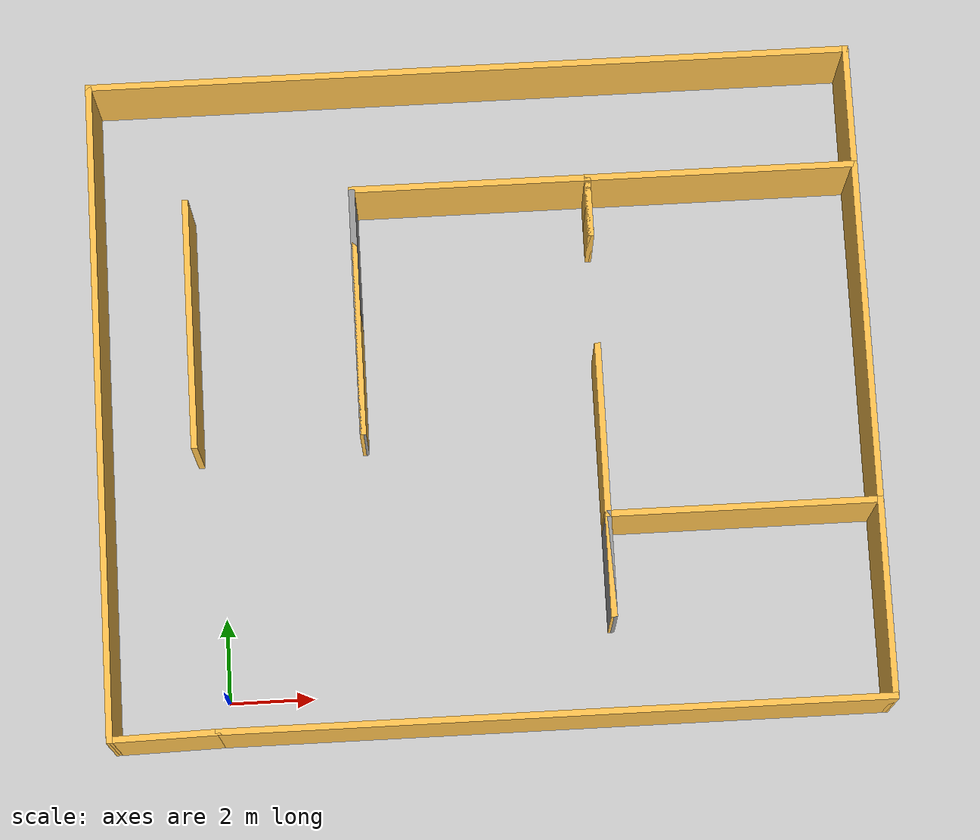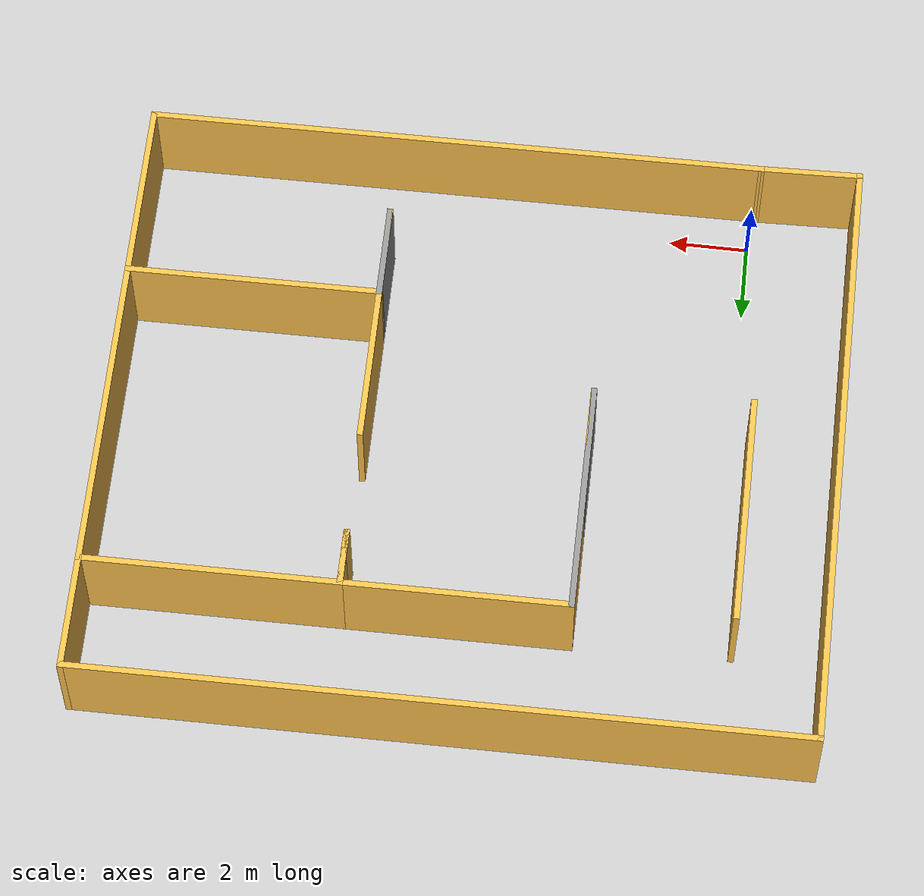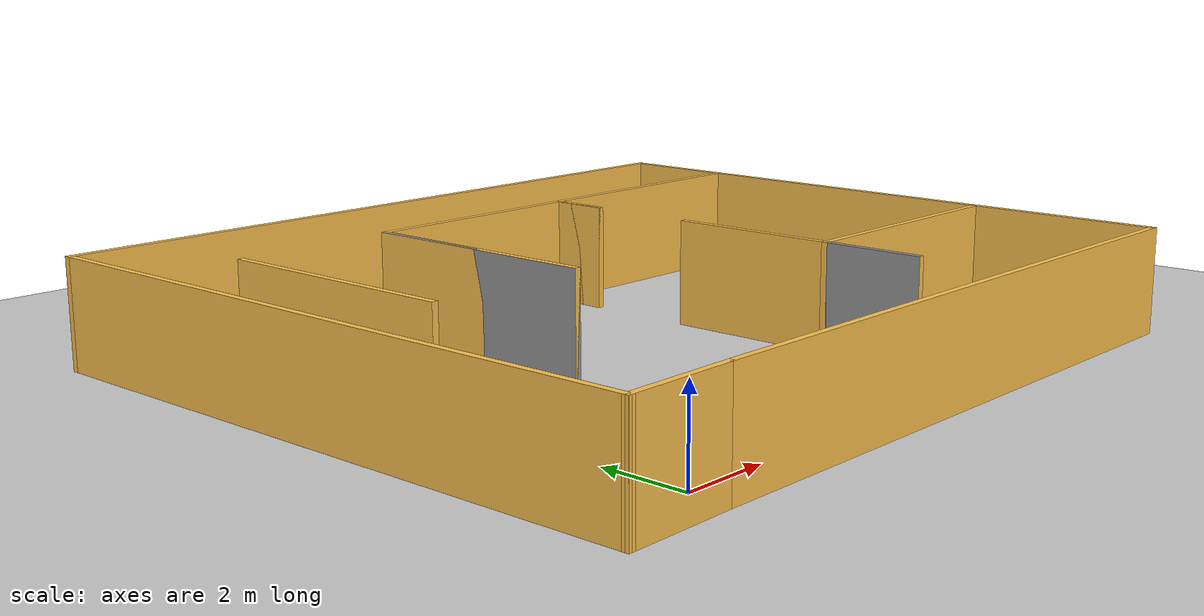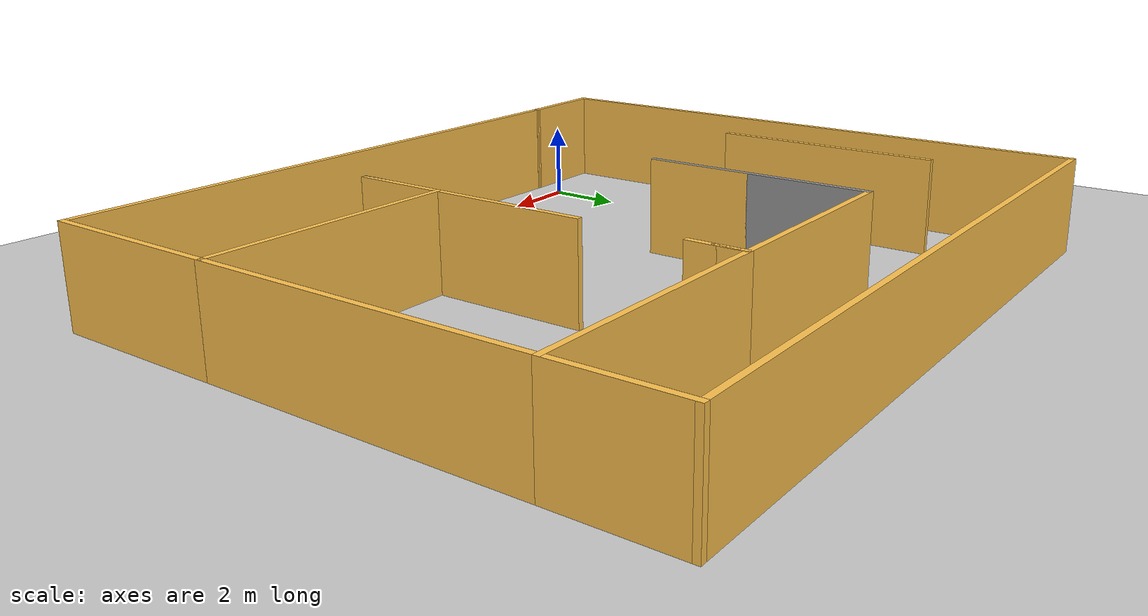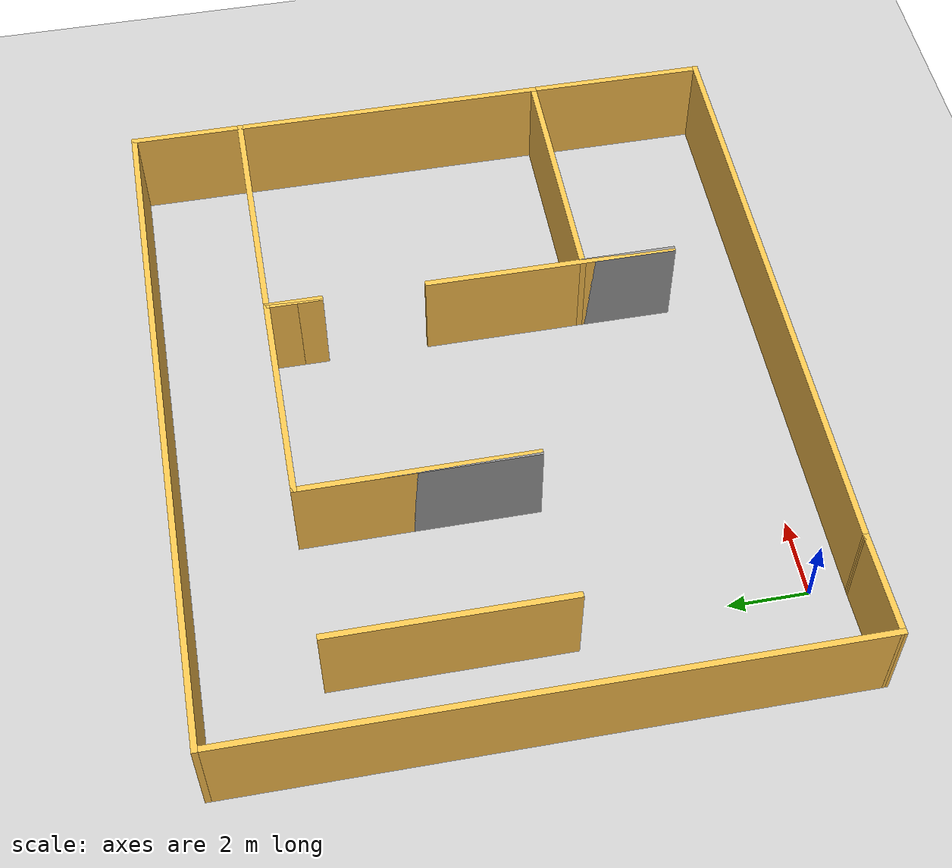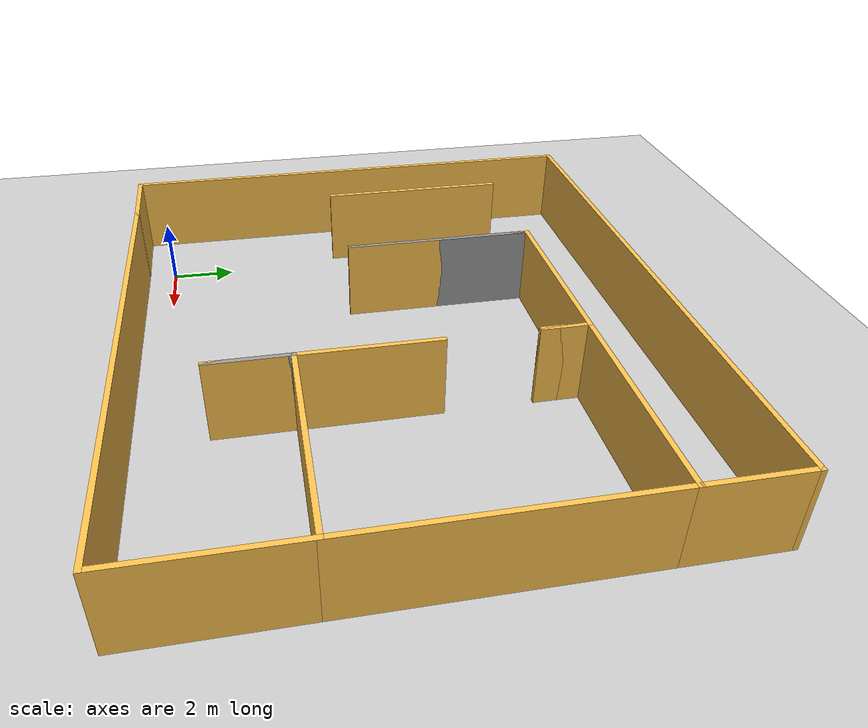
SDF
<sdf version="1.7">
 <world name="default">
  <light name="sun" type="directional">
   <pose>0 0 10 0 -0 0</pose>
   <diffuse>0.8 0.8 0.8 1</diffuse>
   <specular>0.2 0.2 0.2 1</specular>
   <attenuation>
    <range>1000</range>
    <constant>0.9</constant>
    <linear>0.01</linear>
    <quadratic>0.001</quadratic>
   </attenuation>
   <direction>-0.5 0.1 -0.9</direction>
   <spot><inner_angle>0</inner_angle><outer_angle>0</outer_angle><falloff>0</falloff></spot>
  </light>
  <model name="ground_plane">
   <static>1</static>
   <link name="link">
    <collision name="collision">
     <geometry><plane><normal>0 0 1</normal><size>100 100</size></plane></geometry>
     <surface><friction><ode><mu>100</mu><mu2>50</mu2></ode></friction></surface>
    </collision>
    <visual name="visual">
     <cast_shadows>0</cast_shadows>
     <geometry><plane><normal>0 0 1</normal><size>100 100</size></plane></geometry>
     <material>
      <script><uri>file://media/materials/scripts/gazebo.material</uri><name>Gazebo/Grey</name></script>
     </material>
    </visual>
   </link>
  </model>
  <gravity>0 0 -9.8</gravity>
  <magnetic_field>6e-06 2.3e-05 -4.2e-05</magnetic_field>
  <atmosphere type="adiabatic"/>
  <physics type="ode">
   <max_step_size>0.001</max_step_size>
   <real_time_factor>1</real_time_factor>
   <real_time_update_rate>1000</real_time_update_rate>
  </physics>
  <scene><ambient>0.4 0.4 0.4 1</ambient><background>0.7 0.7 0.7 1</background><shadows>1</shadows></scene>
  <spherical_coordinates>
   <surface_model>EARTH_WGS84</surface_model>
   <latitude_deg>0</latitude_deg>
   <longitude_deg>0</longitude_deg>
   <elevation>0</elevation>
   <heading_deg>0</heading_deg>
  </spherical_coordinates>
  <model name="sree_demo_1">
   <pose>6.39549 6.79236 0 0 -0 0</pose>
   <link name="Wall_10">
    <collision name="Wall_10_Collision">
     <geometry><box><size>15.75 0.15 2.5</size></box></geometry>
     <pose>0 0 1.25 0 -0 0</pose>
    </collision>
    <visual name="Wall_10_Visual">
     <pose>0 0 1.25 0 -0 0</pose>
     <geometry><box><size>15.75 0.15 2.5</size></box></geometry>
     <material>
      <script><uri>file://media/materials/scripts/gazebo.material</uri><name>Gazebo/Grey</name></script>
      <ambient>1 0.764706 0.305882 1</ambient>
     </material>
     <meta><layer>0</layer></meta>
    </visual>
    <pose>1.25074 -7.74926 0 0 -0 0</pose>
   </link>
   <link name="Wall_11">
    <collision name="Wall_11_Collision">
     <geometry><box><size>4.75 0.15 2.5</size></box></geometry>
     <pose>0 0 1.25 0 -0 0</pose>
    </collision>
    <visual name="Wall_11_Visual">
     <pose>0 0 1.25 0 -0 0</pose>
     <geometry><box><size>4.75 0.15 2.5</size></box></geometry>
     <material>
      <script><uri>file://media/materials/scripts/gazebo.material</uri><name>Gazebo/Grey</name></script>
      <ambient>1 0.764706 0.305882 1</ambient>
     </material>
     <meta><layer>0</layer></meta>
    </visual>
    <pose>9.05074 -5.44926 0 0 -0 1.5708</pose>
   </link>
   <link name="Wall_12">
    <collision name="Wall_12_Collision">
     <geometry><box><size>6.5 0.15 2.5</size></box></geometry>
     <pose>0 0 1.25 0 -0 0</pose>
    </collision>
    <visual name="Wall_12_Visual">
     <pose>0 0 1.25 0 -0 0</pose>
     <geometry><box><size>6.5 0.15 2.5</size></box></geometry>
     <material>
      <script><uri>file://media/materials/scripts/gazebo.material</uri><name>Gazebo/Grey</name></script>
      <ambient>1 0.764706 0.305882 1</ambient>
     </material>
     <meta><layer>0</layer></meta>
    </visual>
    <pose>5.87574 -3.14926 0 0 -0 3.14159</pose>
   </link>
   <link name="Wall_13">
    <collision name="Wall_13_Collision">
     <geometry><box><size>2.5 0.15 2.5</size></box></geometry>
     <pose>0 0 1.25 0 -0 0</pose>
    </collision>
    <visual name="Wall_13_Visual">
     <pose>0 0 1.25 0 -0 0</pose>
     <geometry><box><size>2.5 0.15 2.5</size></box></geometry>
     <material>
      <script><uri>file://media/materials/scripts/gazebo.material</uri><name>Gazebo/Grey</name></script>
      <ambient>1 1 1 1</ambient>
     </material>
     <meta><layer>0</layer></meta>
    </visual>
    <pose>2.70074 -4.32426 0 0 -0 -1.5708</pose>
   </link>
   <link name="Wall_14">
    <collision name="Wall_14_Collision">
     <geometry><box><size>6.5 0.15 2.5</size></box></geometry>
     <pose>0 0 1.25 0 -0 0</pose>
    </collision>
    <visual name="Wall_14_Visual">
     <pose>0 0 1.25 0 -0 0</pose>
     <geometry><box><size>6.5 0.15 2.5</size></box></geometry>
     <material>
      <script><uri>file://media/materials/scripts/gazebo.material</uri><name>Gazebo/Grey</name></script>
      <ambient>1 0.764706 0.305882 1</ambient>
     </material>
     <meta><layer>0</layer></meta>
    </visual>
    <pose>2.70074 -2.32426 0 0 -0 1.5708</pose>
   </link>
   <link name="Wall_16">
    <collision name="Wall_16_Collision">
     <geometry><box><size>8.25 0.15 2.5</size></box></geometry>
     <pose>0 0 1.25 0 -0 0</pose>
    </collision>
    <visual name="Wall_16_Visual">
     <pose>0 0 1.25 0 -0 0</pose>
     <geometry><box><size>8.25 0.15 2.5</size></box></geometry>
     <material>
      <script><uri>file://media/materials/scripts/gazebo.material</uri><name>Gazebo/Grey</name></script>
      <ambient>1 0.764706 0.305882 1</ambient>
     </material>
     <meta><layer>0</layer></meta>
    </visual>
    <pose>9.05074 0.900742 0 0 -0 1.5708</pose>
   </link>
   <link name="Wall_17">
    <collision name="Wall_17_Collision">
     <geometry><box><size>6.5 0.15 2.5</size></box></geometry>
     <pose>0 0 1.25 0 -0 0</pose>
    </collision>
    <visual name="Wall_17_Visual">
     <pose>0 0 1.25 0 -0 0</pose>
     <geometry><box><size>6.5 0.15 2.5</size></box></geometry>
     <material>
      <script><uri>file://media/materials/scripts/gazebo.material</uri><name>Gazebo/Grey</name></script>
      <ambient>1 0.764706 0.305882 1</ambient>
     </material>
     <meta><layer>0</layer></meta>
    </visual>
    <pose>5.87574 4.95074 0 0 -0 3.14159</pose>
   </link>
   <link name="Wall_18">
    <collision name="Wall_18_Collision">
     <geometry><box><size>1.5 0.15 2.5</size></box></geometry>
     <pose>0 0 1.25 0 -0 0</pose>
    </collision>
    <visual name="Wall_18_Visual">
     <pose>0 0 1.25 0 -0 0</pose>
     <geometry><box><size>1.5 0.15 2.5</size></box></geometry>
     <material>
      <script><uri>file://media/materials/scripts/gazebo.material</uri><name>Gazebo/Grey</name></script>
      <ambient>1 0.764706 0.305882 1</ambient>
     </material>
     <meta><layer>0</layer></meta>
    </visual>
    <pose>2.70074 4.27574 0 0 -0 -1.5708</pose>
   </link>
   <link name="Wall_19">
    <collision name="Wall_19_Collision">
     <geometry><box><size>1.5 0.15 2.5</size></box></geometry>
     <pose>0 0 1.25 0 -0 0</pose>
    </collision>
    <visual name="Wall_19_Visual">
     <pose>0 0 1.25 0 -0 0</pose>
     <geometry><box><size>1.5 0.15 2.5</size></box></geometry>
     <material>
      <script><uri>file://media/materials/scripts/gazebo.material</uri><name>Gazebo/Grey</name></script>
      <ambient>1 0.764706 0.305882 1</ambient>
     </material>
     <meta><layer>0</layer></meta>
    </visual>
    <pose>2.70074 4.27574 0 0 -0 1.5708</pose>
   </link>
   <link name="Wall_20">
    <collision name="Wall_20_Collision">
     <geometry><box><size>5.75 0.15 2.5</size></box></geometry>
     <pose>0 0 1.25 0 -0 0</pose>
    </collision>
    <visual name="Wall_20_Visual">
     <pose>0 0 1.25 0 -0 0</pose>
     <geometry><box><size>5.75 0.15 2.5</size></box></geometry>
     <material>
      <script><uri>file://media/materials/scripts/gazebo.material</uri><name>Gazebo/Grey</name></script>
      <ambient>1 0.764706 0.305882 1</ambient>
     </material>
     <meta><layer>0</layer></meta>
    </visual>
    <pose>-0.099258 4.95074 0 0 -0 3.14159</pose>
   </link>
   <link name="Wall_21">
    <collision name="Wall_21_Collision">
     <geometry><box><size>6 0.15 2.5</size></box></geometry>
     <pose>0 0 1.25 0 -0 0</pose>
    </collision>
    <visual name="Wall_21_Visual">
     <pose>0 0 1.25 0 -0 0</pose>
     <geometry><box><size>6 0.15 2.5</size></box></geometry>
     <material>
      <script><uri>file://media/materials/scripts/gazebo.material</uri><name>Gazebo/Grey</name></script>
      <ambient>1 1 1 1</ambient>
     </material>
     <meta><layer>0</layer></meta>
    </visual>
    <pose>-2.89926 2.02574 0 0 -0 -1.5708</pose>
   </link>
   <link name="Wall_22">
    <collision name="Wall_22_Collision">
     <geometry><box><size>6 0.15 2.5</size></box></geometry>
     <pose>0 0 1.25 0 -0 0</pose>
    </collision>
    <visual name="Wall_22_Visual">
     <pose>0 0 1.25 0 -0 0</pose>
     <geometry><box><size>6 0.15 2.5</size></box></geometry>
     <material>
      <script><uri>file://media/materials/scripts/gazebo.material</uri><name>Gazebo/Grey</name></script>
      <ambient>1 0.764706 0.305882 1</ambient>
     </material>
     <meta><layer>0</layer></meta>
    </visual>
    <pose>-2.89926 2.02574 0 0 -0 1.5708</pose>
   </link>
   <link name="Wall_24">
    <collision name="Wall_24_Collision">
     <geometry><box><size>3 0.15 2.5</size></box></geometry>
     <pose>0 0 1.25 0 -0 0</pose>
    </collision>
    <visual name="Wall_24_Visual">
     <pose>0 0 1.25 0 -0 0</pose>
     <geometry><box><size>3 0.15 2.5</size></box></geometry>
     <material>
      <script><uri>file://media/materials/scripts/gazebo.material</uri><name>Gazebo/Grey</name></script>
      <ambient>1 0.764706 0.305882 1</ambient>
     </material>
     <meta><layer>0</layer></meta>
    </visual>
    <pose>9.05074 6.37574 0 0 -0 1.5708</pose>
   </link>
   <link name="Wall_25">
    <collision name="Wall_25_Collision">
     <geometry><box><size>18.25 0.15 2.5</size></box></geometry>
     <pose>0 0 1.25 0 -0 0</pose>
    </collision>
    <visual name="Wall_25_Visual">
     <pose>0 0 1.25 0 -0 0</pose>
     <geometry><box><size>18.25 0.15 2.5</size></box></geometry>
     <material>
      <script><uri>file://media/materials/scripts/gazebo.material</uri><name>Gazebo/Grey</name></script>
      <ambient>1 0.764706 0.305882 1</ambient>
     </material>
     <meta><layer>0</layer></meta>
    </visual>
    <pose>0.000742 7.80074 0 0 -0 3.14159</pose>
   </link>
   <link name="Wall_26">
    <collision name="Wall_26_Collision">
     <geometry><box><size>15.75 0.15 2.5</size></box></geometry>
     <pose>0 0 1.25 0 -0 0</pose>
    </collision>
    <visual name="Wall_26_Visual">
     <pose>0 0 1.25 0 -0 0</pose>
     <geometry><box><size>15.75 0.15 2.5</size></box></geometry>
     <material>
      <script><uri>file://media/materials/scripts/gazebo.material</uri><name>Gazebo/Grey</name></script>
      <ambient>1 0.764706 0.305882 1</ambient>
     </material>
     <meta><layer>0</layer></meta>
    </visual>
    <pose>-9.04926 0.000742 0 0 -0 -1.5708</pose>
   </link>
   <link name="Wall_27">
    <collision name="Wall_27_Collision">
     <geometry><box><size>2.6505 0.15 2.5</size></box></geometry>
     <pose>0 0 1.25 0 -0 0</pose>
    </collision>
    <visual name="Wall_27_Visual">
     <pose>0 0 1.25 0 -0 0</pose>
     <geometry><box><size>2.6505 0.15 2.5</size></box></geometry>
     <material>
      <script><uri>file://media/materials/scripts/gazebo.material</uri><name>Gazebo/Grey</name></script>
      <ambient>1 0.764706 0.305882 1</ambient>
     </material>
     <meta><layer>0</layer></meta>
    </visual>
    <pose>-7.79926 -7.77426 0 0 -0 0.019997</pose>
   </link>
   <link name="Wall_29">
    <collision name="Wall_29_Collision">
     <geometry><box><size>6 0.15 2.5</size></box></geometry>
     <pose>0 0 1.25 0 -0 0</pose>
    </collision>
    <visual name="Wall_29_Visual">
     <pose>0 0 1.25 0 -0 0</pose>
     <geometry><box><size>6 0.15 2.5</size></box></geometry>
     <material>
      <script><uri>file://media/materials/scripts/gazebo.material</uri><name>Gazebo/Grey</name></script>
      <ambient>1 0.764706 0.305882 1</ambient>
     </material>
     <meta><layer>0</layer></meta>
    </visual>
    <pose>-6.85065 1.91827 0 0 -0 -1.5708</pose>
   </link>
   <static>1</static>
  </model>
 </world>
</sdf>
